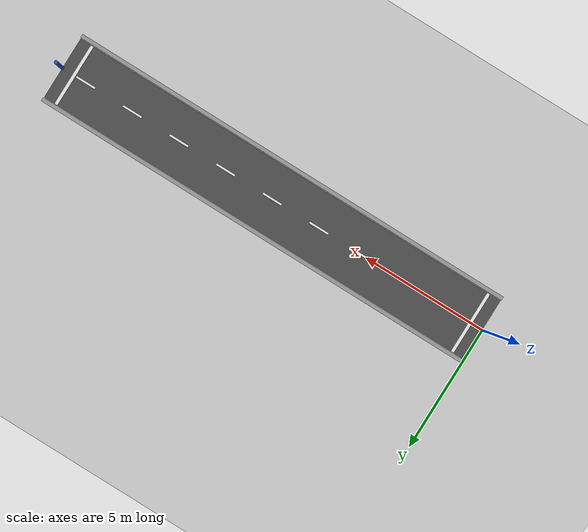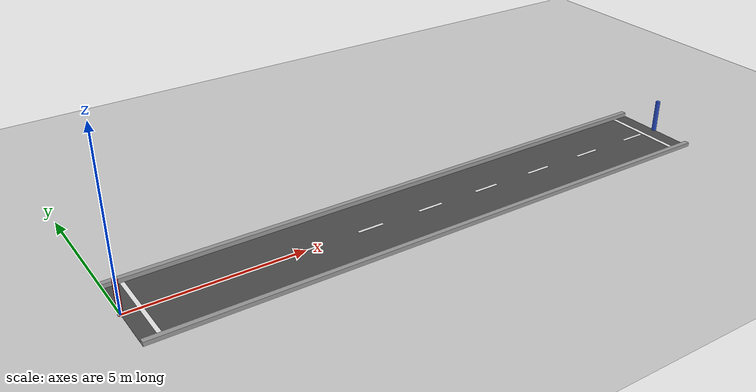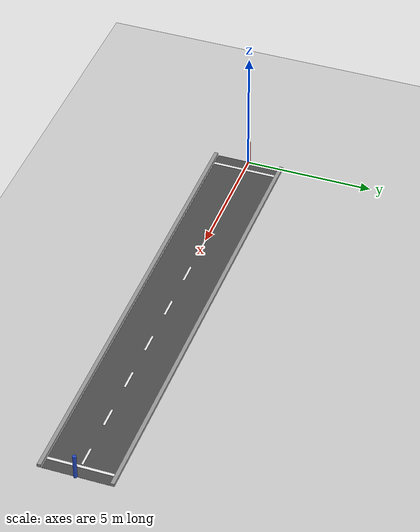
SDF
<?xml version="1.0"?>
<sdf version="1.6">
  <world name="road">

    <gravity>0 0 -9.81</gravity>
    <physics name="default" type="ode">
      <max_step_size>0.001</max_step_size>
      <real_time_factor>1.0</real_time_factor>
      <real_time_update_rate>1000</real_time_update_rate>
      <ode>
        <solver><type>quick</type><iters>100</iters><sor>1.3</sor></solver>
        <constraints>
          <cfm>0.0</cfm><erp>0.2</erp>
          <contact_max_correcting_vel>100.0</contact_max_correcting_vel>
          <contact_surface_layer>0.001</contact_surface_layer>
        </constraints>
      </ode>
    </physics>

    <include><uri>model://sun</uri></include>
    <include><uri>model://ground_plane</uri></include>

    <!-- Road surface — dark grey tarmac -->
    <model name="road_surface">
      <static>true</static>
      <pose>9 0 0.002 0 0 0</pose>
      <link name="link">
        <visual name="vis">
          <geometry><box><size>18 2.5 0.004</size></box></geometry>
          <material>
            <script>
              <uri>file://media/materials/scripts/gazebo.material</uri>
              <name>Gazebo/DarkGrey</name>
            </script>
          </material>
        </visual>
      </link>
    </model>

    <!-- Left kerb  (y = +1.35) — visual only -->
    <model name="kerb_left">
      <static>true</static>
      <pose>9 1.35 0.06 0 0 0</pose>
      <link name="link">
        <visual name="vis">
          <geometry><box><size>18.0 0.15 0.12</size></box></geometry>
          <material>
            <script>
              <uri>file://media/materials/scripts/gazebo.material</uri>
              <name>Gazebo/Grey</name>
            </script>
          </material>
        </visual>
      </link>
    </model>

    <!-- Right kerb  (y = -1.35) — visual only -->
    <model name="kerb_right">
      <static>true</static>
      <pose>9 -1.35 0.06 0 0 0</pose>
      <link name="link">
        <visual name="vis">
          <geometry><box><size>18.0 0.15 0.12</size></box></geometry>
          <material>
            <script>
              <uri>file://media/materials/scripts/gazebo.material</uri>
              <name>Gazebo/Grey</name>
            </script>
          </material>
        </visual>
      </link>
    </model>

    <!-- Centre dashed line — 9 white dashes -->
    <model name="dash_1"><static>true</static><pose>1 0 0.005 0 0 0</pose>
      <link name="l"><visual name="v"><geometry><box><size>0.8 0.08 0.002</size></box></geometry>
        <material><script><name>Gazebo/White</name></script></material></visual></link></model>
    <model name="dash_2"><static>true</static><pose>3 0 0.005 0 0 0</pose>
      <link name="l"><visual name="v"><geometry><box><size>0.8 0.08 0.002</size></box></geometry>
        <material><script><name>Gazebo/White</name></script></material></visual></link></model>
    <model name="dash_3"><static>true</static><pose>5 0 0.005 0 0 0</pose>
      <link name="l"><visual name="v"><geometry><box><size>0.8 0.08 0.002</size></box></geometry>
        <material><script><name>Gazebo/White</name></script></material></visual></link></model>
    <model name="dash_4"><static>true</static><pose>7 0 0.005 0 0 0</pose>
      <link name="l"><visual name="v"><geometry><box><size>0.8 0.08 0.002</size></box></geometry>
        <material><script><name>Gazebo/White</name></script></material></visual></link></model>
    <model name="dash_5"><static>true</static><pose>9 0 0.005 0 0 0</pose>
      <link name="l"><visual name="v"><geometry><box><size>0.8 0.08 0.002</size></box></geometry>
        <material><script><name>Gazebo/White</name></script></material></visual></link></model>
    <model name="dash_6"><static>true</static><pose>11 0 0.005 0 0 0</pose>
      <link name="l"><visual name="v"><geometry><box><size>0.8 0.08 0.002</size></box></geometry>
        <material><script><name>Gazebo/White</name></script></material></visual></link></model>
    <model name="dash_7"><static>true</static><pose>13 0 0.005 0 0 0</pose>
      <link name="l"><visual name="v"><geometry><box><size>0.8 0.08 0.002</size></box></geometry>
        <material><script><name>Gazebo/White</name></script></material></visual></link></model>
    <model name="dash_8"><static>true</static><pose>15 0 0.005 0 0 0</pose>
      <link name="l"><visual name="v"><geometry><box><size>0.8 0.08 0.002</size></box></geometry>
        <material><script><name>Gazebo/White</name></script></material></visual></link></model>
    <model name="dash_9"><static>true</static><pose>17 0 0.005 0 0 0</pose>
      <link name="l"><visual name="v"><geometry><box><size>0.8 0.08 0.002</size></box></geometry>
        <material><script><name>Gazebo/White</name></script></material></visual></link></model>

    <!-- START marker — red post at (0, 0) -->
    <model name="start_post">
      <static>true</static>
      <pose>0 0 0.5 0 0 0</pose>
      <link name="link">
        <visual name="vis">
          <geometry><cylinder><radius>0.07</radius><length>1.0</length></cylinder></geometry>
          <material>
            <script>
              <uri>file://media/materials/scripts/gazebo.material</uri>
              <name>Gazebo/Red</name>
            </script>
          </material>
        </visual>
      </link>
    </model>

    <!-- START line — white stripe across the road at x=0.5 -->
    <model name="start_line">
      <static>true</static>
      <pose>0.5 0 0.005 0 0 0</pose>
      <link name="link">
        <visual name="vis">
          <geometry><box><size>0.12 2.5 0.002</size></box></geometry>
          <material>
            <script>
              <uri>file://media/materials/scripts/gazebo.material</uri>
              <name>Gazebo/White</name>
            </script>
          </material>
        </visual>
      </link>
    </model>

    <!-- END marker — blue post at (18, 0) -->
    <model name="end_post">
      <static>true</static>
      <pose>18 0 0.5 0 0 0</pose>
      <link name="link">
        <visual name="vis">
          <geometry><cylinder><radius>0.07</radius><length>1.0</length></cylinder></geometry>
          <material>
            <script>
              <uri>file://media/materials/scripts/gazebo.material</uri>
              <name>Gazebo/Blue</name>
            </script>
          </material>
        </visual>
      </link>
    </model>

    <!-- END line — white stripe across the road at x=17.5 -->
    <model name="end_line">
      <static>true</static>
      <pose>17.5 0 0.005 0 0 0</pose>
      <link name="link">
        <visual name="vis">
          <geometry><box><size>0.12 2.5 0.002</size></box></geometry>
          <material>
            <script>
              <uri>file://media/materials/scripts/gazebo.material</uri>
              <name>Gazebo/White</name>
            </script>
          </material>
        </visual>
      </link>
    </model>

  </world>
</sdf>
